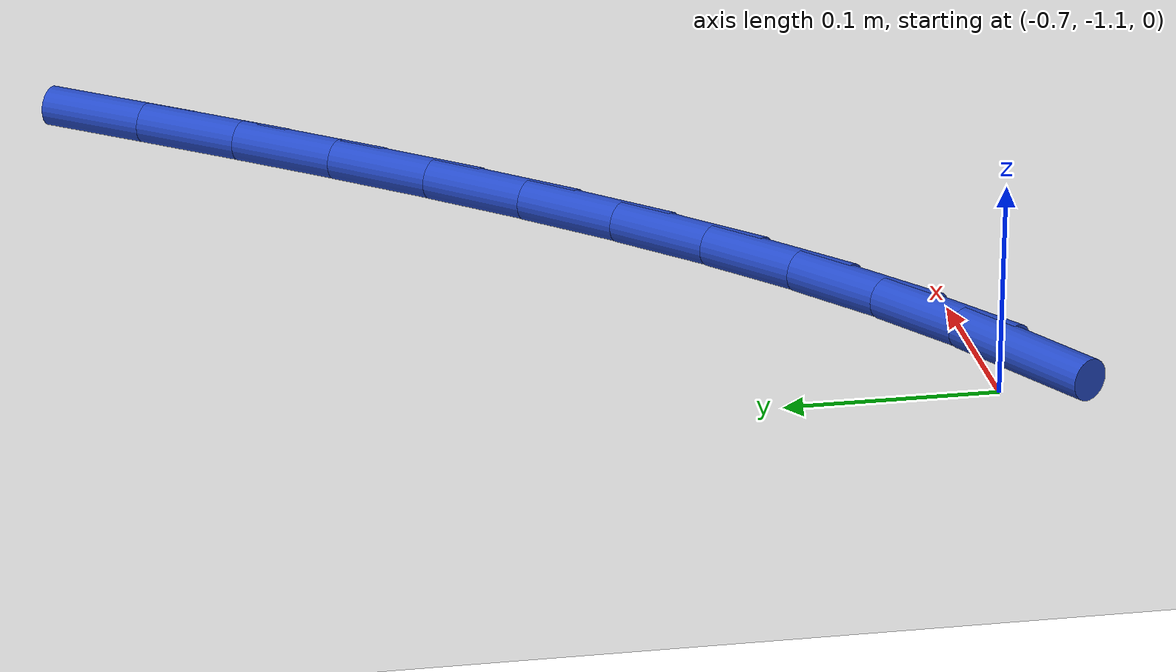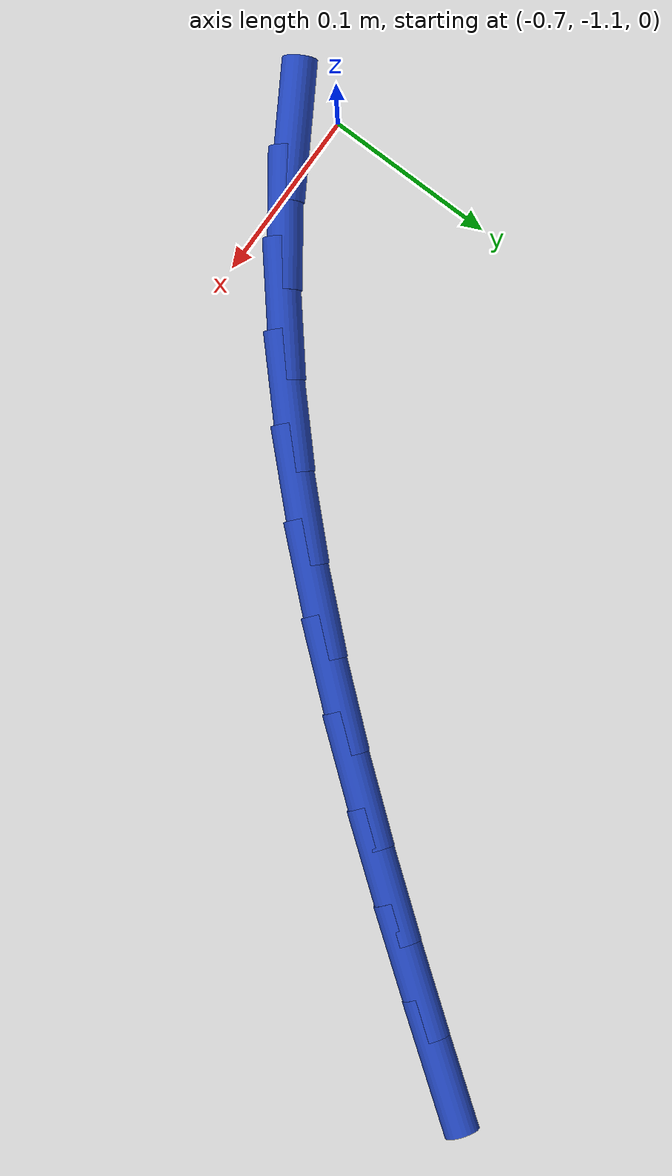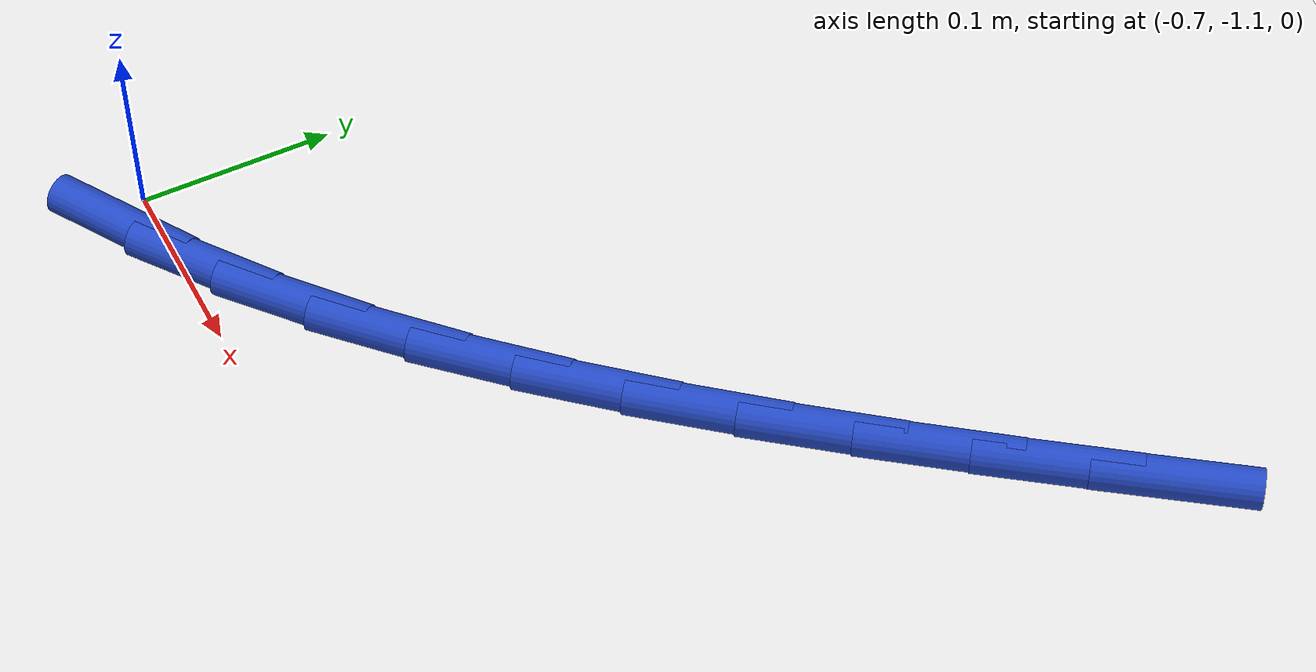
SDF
<sdf version="1.6">
 <world name="default">
  <model name="ground_plane">
   <static>1</static>
   <link name="link">
    <collision name="collision">
     <geometry><plane><normal>0 0 1</normal><size>100 100</size></plane></geometry>
     <surface><friction><ode><mu>100</mu><mu2>50</mu2></ode></friction></surface>
    </collision>
    <visual name="visual">
     <cast_shadows>0</cast_shadows>
     <geometry><plane><normal>0 0 1</normal><size>100 100</size></plane></geometry>
     <material>
      <script><uri>file://media/materials/scripts/gazebo.material</uri><name>Gazebo/WhiteGlow</name></script>
     </material>
    </visual>
   </link>
  </model>
  <model name="line">
   <link name="link_144">
    <pose>-0.680892793125613 -1.1169288805208333 0.01 0 1.57 0.5435520188982393</pose>
    <collision name="collision">
     <geometry><cylinder><radius>0.01</radius><length>0.08</length></cylinder></geometry>
    </collision>
    <visual name="visual">
     <material>
      <script><name>Gazebo/Blue</name><uri>file://media/materials/scripts/gazebo.material</uri></script>
     </material>
     <geometry><cylinder><radius>0.01</radius><length>0.08</length></cylinder></geometry>
    </visual>
   </link>
   <link name="link_145">
    <pose>-0.6385625311636363 -1.0913500467145407 0.01 0 1.57 0.6226575121981748</pose>
    <collision name="collision">
     <geometry><cylinder><radius>0.01</radius><length>0.08</length></cylinder></geometry>
    </collision>
    <visual name="visual">
     <material>
      <script><name>Gazebo/Blue</name><uri>file://media/materials/scripts/gazebo.material</uri></script>
     </material>
     <geometry><cylinder><radius>0.01</radius><length>0.08</length></cylinder></geometry>
    </visual>
   </link>
   <link name="link_146">
    <pose>-0.5976759690619499 -1.0619964145007015 0.01 0 1.57 0.6910216613227018</pose>
    <collision name="collision">
     <geometry><cylinder><radius>0.01</radius><length>0.08</length></cylinder></geometry>
    </collision>
    <visual name="visual">
     <material>
      <script><name>Gazebo/Blue</name><uri>file://media/materials/scripts/gazebo.material</uri></script>
     </material>
     <geometry><cylinder><radius>0.01</radius><length>0.08</length></cylinder></geometry>
    </visual>
   </link>
   <link name="link_147">
    <pose>-0.5581398951026172 -1.0292979008564838 0.01 0 1.57 0.7493434554541527</pose>
    <collision name="collision">
     <geometry><cylinder><radius>0.01</radius><length>0.08</length></cylinder></geometry>
    </collision>
    <visual name="visual">
     <material>
      <script><name>Gazebo/Blue</name><uri>file://media/materials/scripts/gazebo.material</uri></script>
     </material>
     <geometry><cylinder><radius>0.01</radius><length>0.08</length></cylinder></geometry>
    </visual>
   </link>
   <link name="link_148">
    <pose>-0.5198610975677043 -0.9936844227590569 0.01 0 1.57 0.7984774617392472</pose>
    <collision name="collision">
     <geometry><cylinder><radius>0.01</radius><length>0.08</length></cylinder></geometry>
    </collision>
    <visual name="visual">
     <material>
      <script><name>Gazebo/Blue</name><uri>file://media/materials/scripts/gazebo.material</uri></script>
     </material>
     <geometry><cylinder><radius>0.01</radius><length>0.08</length></cylinder></geometry>
    </visual>
   </link>
   <link name="link_149">
    <pose>-0.48274636473927457 -0.9555858971855896 0.01 0 1.57 0.8392817688570573</pose>
    <collision name="collision">
     <geometry><cylinder><radius>0.01</radius><length>0.08</length></cylinder></geometry>
    </collision>
    <visual name="visual">
     <material>
      <script><name>Gazebo/Blue</name><uri>file://media/materials/scripts/gazebo.material</uri></script>
     </material>
     <geometry><cylinder><radius>0.01</radius><length>0.08</length></cylinder></geometry>
    </visual>
   </link>
   <link name="link_150">
    <pose>-0.4467024848993927 -0.9154322411132513 0.01 0 1.57 0.8725297368733036</pose>
    <collision name="collision">
     <geometry><cylinder><radius>0.01</radius><length>0.08</length></cylinder></geometry>
    </collision>
    <visual name="visual">
     <material>
      <script><name>Gazebo/Blue</name><uri>file://media/materials/scripts/gazebo.material</uri></script>
     </material>
     <geometry><cylinder><radius>0.01</radius><length>0.08</length></cylinder></geometry>
    </visual>
   </link>
   <link name="link_151">
    <pose>-0.41163624633012286 -0.8736533715192104 0.01 0 1.57 0.8988643217277722</pose>
    <collision name="collision">
     <geometry><cylinder><radius>0.01</radius><length>0.08</length></cylinder></geometry>
    </collision>
    <visual name="visual">
     <material>
      <script><name>Gazebo/Blue</name><uri>file://media/materials/scripts/gazebo.material</uri></script>
     </material>
     <geometry><cylinder><radius>0.01</radius><length>0.08</length></cylinder></geometry>
    </visual>
   </link>
   <link name="link_152">
    <pose>-0.37745443731352946 -0.8306792053806359 0.01 0 1.57 0.9187768038287363</pose>
    <collision name="collision">
     <geometry><cylinder><radius>0.01</radius><length>0.08</length></cylinder></geometry>
    </collision>
    <visual name="visual">
     <material>
      <script><name>Gazebo/Blue</name><uri>file://media/materials/scripts/gazebo.material</uri></script>
     </material>
     <geometry><cylinder><radius>0.01</radius><length>0.08</length></cylinder></geometry>
    </visual>
   </link>
   <link name="link_153">
    <pose>-0.3440638461316763 -0.7869396596746958 0.01 0 1.57 0.9325969263042471</pose>
    <collision name="collision">
     <geometry><cylinder><radius>0.01</radius><length>0.08</length></cylinder></geometry>
    </collision>
    <visual name="visual">
     <material>
      <script><name>Gazebo/Blue</name><uri>file://media/materials/scripts/gazebo.material</uri></script>
     </material>
     <geometry><cylinder><radius>0.01</radius><length>0.08</length></cylinder></geometry>
    </visual>
   </link>
   <link name="link_154">
    <pose>-0.31137126106662905 -0.742864651378561 0.01 0 1.57 0.9404858165645723</pose>
    <collision name="collision">
     <geometry><cylinder><radius>0.01</radius><length>0.08</length></cylinder></geometry>
    </collision>
    <visual name="visual">
     <material>
      <script><name>Gazebo/Blue</name><uri>file://media/materials/scripts/gazebo.material</uri></script>
     </material>
     <geometry><cylinder><radius>0.01</radius><length>0.08</length></cylinder></geometry>
    </visual>
   </link>
  </model>
 </world>
</sdf>
